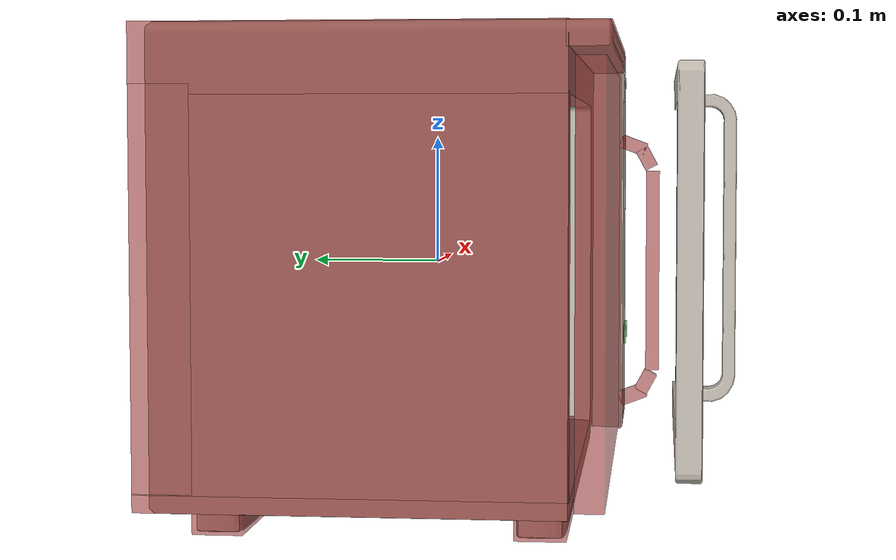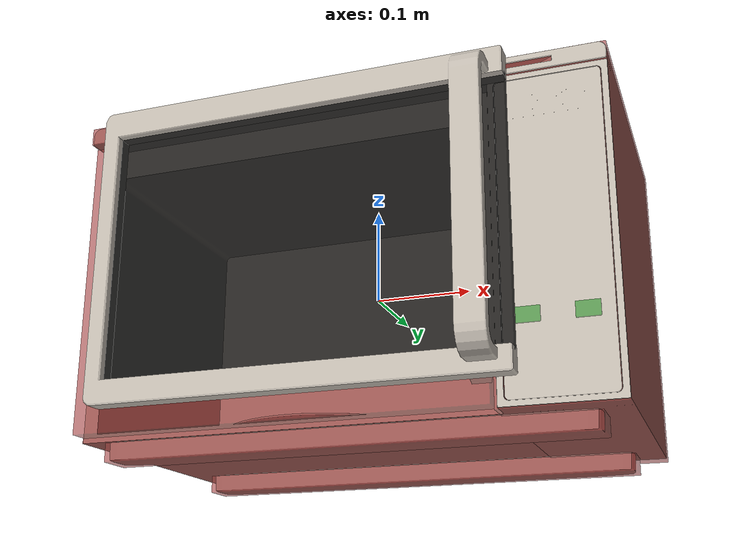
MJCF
<?xml version='1.0' encoding='UTF-8'?>
<mujoco model="model">
  <option timestep="0.002" gravity="0.0 0.0 -9.81"/>
  <compiler angle="radian"/>
  <asset>
    <mesh file="visuals/door.obj" name="door_vis"/>
    <mesh file="visuals/door_Clear.obj" name="door_Clear_vis"/>
    <mesh file="visuals/Body001.obj" name="Body001_vis"/>
    <mesh file="visuals/Disc001.obj" name="Disc001_vis"/>
    <texture file="visuals/T_BC001.png" name="Body001_material" type="2d"/>
    <material name="Body001_material" rgba="1 1 1 1.0" texture="Body001_material" shininess="0.1" specular="4"/>
    <texture file="visuals/T_BC001.png" name="door_material" type="2d"/>
    <material name="door_material" rgba="1 1 1 1.0" texture="door_material" shininess="0.4472135901451111" specular="0.3103448502657381"/>
    <material name="door_Clear_material" rgba="0.03637973591685295 0.03637973591685295 0.03637973591685295 0.800000011920929" shininess="0.4472135901451111" specular="0.3103448502657381"/>
    <texture file="visuals/T_BC001.png" name="Disc001_material" type="2d"/>
    <material name="Disc001_material" rgba="1 1 1 1.0" texture="Disc001_material" shininess="0.1" specular="4"/>
  </asset>
  <default>
    <default class="visual">
      <geom conaffinity="0" contype="0" group="1" type="mesh"/>
    </default>
    <default class="collision">
      <geom group="0" rgba="0.5 0 0 0.5"/>
    </default>
    <default class="spawn">
      <geom group="0" rgba="1 1 1 0.5" contype="0" conaffinity="0"/>
      <site group="0" rgba="1 1 1 0.5"/>
    </default>
    <default class="region">
      <geom group="1" conaffinity="0" contype="0" rgba="0 1 0 0"/>
    </default>
  </default>
  <worldbody>
    <body>
      <body name="object">
        <geom class="collision" type="cylinder" pos="-0.05763543024659157 0.011082738637924194 -0.13927628099918365" size="0.11278744786977768 0.0008700147154740989" quat="1.0 0.0 0.0 0.0" name="tray" rgba="0 1 0 0.5"/>
        <geom class="collision" type="box" pos="0.18966542184352875 -0.14820145070552826 -0.07778368890285492" size="0.010899275541305542 0.0010898024775087833 0.007179934997111559" quat="1.0 0.0 0.0 0.0" name="stop_button" rgba="0.0 0.5 0 0.5"/>
        <geom class="collision" type="box" pos="0.24208709597587585 -0.14820145070552826 -0.07778368890285492" size="0.010918227955698967 0.0010898024775087833 0.007179934997111559" quat="1.0 0.0 0.0 0.0" name="start_button" rgba="0.0 0.5 0 0.5"/>
        <geom mesh="Body001_vis" type="mesh" solimp="0.998 0.998 0.001" solref="0.001 1" friction="0.95 0.3 0.1" class="visual" material="Body001_material"/>
        <geom class="collision" type="box" pos="-0.05649961531162262 0.029966896399855614 -0.15164676308631897" size="0.21579916775226593 0.14951400458812714 0.00616192352026701" quat="1.0 0.0 0.0 0.0"/>
        <geom class="collision" type="box" pos="-0.2644837498664856 0.029966996982693672 -0.008132663555443287" size="0.007814250886440277 0.1495138257741928 0.13806308805942535" quat="1.0 0.0 0.0 0.0"/>
        <geom class="collision" type="box" pos="-0.05650017037987709 0.15837810933589935 -0.004743431694805622" size="0.2157985419034958 0.021102778613567352 0.14003092050552368" quat="1.0 0.0 0.0 0.0"/>
        <geom class="collision" type="box" pos="-0.056502193212509155 -0.13249026238918304 0.16796237230300903" size="0.21580001711845398 0.015356916934251785 0.009088726714253426" quat="1.0 0.0 0.0 0.0"/>
        <geom class="collision" type="box" pos="0.21454665064811707 0.016869667917490005 0.009098493494093418" size="0.05775176361203194 0.16261115670204163 0.16829872131347656" quat="1.0 0.0 0.0 0.0"/>
        <geom class="collision" type="box" pos="-0.056500960141420364 0.029967661947011948 0.1527765989303589" size="0.21579766273498535 0.1495133936405182 0.02462089993059635" quat="1.0 0.0 0.0 0.0"/>
        <geom class="collision" type="box" pos="0.1473204791545868 0.02996855601668358 -0.008132663555443287" size="0.011625289916992188 0.14951397478580475 0.13806168735027313" quat="1.0 0.0 0.0 0.0"/>
        <geom class="collision" type="box" pos="-0.0006951242685317993 -0.09923121333122253 -0.16784480214118958" size="0.2463834136724472 0.018072057515382767 0.0095522440969944" quat="1.0 0.0 0.0 0.0"/>
        <geom class="collision" type="box" pos="-0.0006951242685317993 0.1258891373872757 -0.16784480214118958" size="0.2463832050561905 0.018072044476866722 0.009552237577736378" quat="1.0 0.0 0.0 0.0"/>
        <body name="door">
          <joint axis="0.0 0.0 1.0" pos="-0.25876790285110474 -0.13358816504478455 -0.0004099905490875244" limited="true" name="microjoint" range="-1.5707963267948966 0.0" type="hinge" damping="1" frictionloss="1" armature=".01" stiffness="0.05"/>
          <geom mesh="door_vis" type="mesh" solimp="0.998 0.998 0.001" solref="0.001 1" friction="0.95 0.3 0.1" class="visual" material="door_material"/>
          <geom class="collision" type="box" pos="-0.05747814476490021 -0.1336144506931305 7.297919364646077e-05" size="0.2102060317993164 0.010283015668392181 0.15368500351905823" quat="1.0 0.0 0.0 0.0" name="door_main"/>
          <geom class="collision" type="box" pos="-0.056987322866916656 -0.1371203511953354 -0.0003347874735482037" size="0.15617835521697998 0.006391293369233608 0.09085484594106674" quat="1.0 0.0 0.0 0.0"/>
          <geom class="collision" type="box" pos="0.14707039296627045 -0.17343617975711823 -0.01623465120792389" size="0.008900480344891548 0.005757460370659828 0.08767075091600418" quat="1.0 0.0 0.0 0.0" name="door_handle_main"/>
          <geom class="collision" type="box" pos="0.14707039296627045 -0.15629811584949493 0.09394919127225876" size="0.008900480344891548 0.005757460370659828 0.011349364183843136" quat="0.823179304599762 -0.5677815079689026 -0.0 0.0"/>
          <geom class="collision" type="box" pos="0.14707039296627045 -0.16797927021980286 0.08249380439519882" size="0.008900480344891548 0.005757460370659828 0.009123585186898708" quat="0.969722330570221 -0.24421025812625885 -0.0 0.0"/>
          <geom class="collision" type="box" pos="0.14707039296627045 -0.16796772181987762 -0.11498462408781052" size="0.008900480344891548 0.005757460370659828 0.009099206887185574" quat="0.969722330570221 0.24421025812625885 0.0 0.0"/>
          <geom class="collision" type="box" pos="0.14707039296627045 -0.15629811584949493 -0.12641854584217072" size="0.008900480344891548 0.005757460370659828 0.011349364183843136" quat="0.823179304599762 0.5677815079689026 0.0 0.0"/>
          <body name="door_Clear">
            <geom mesh="door_Clear_vis" type="mesh" solimp="0.998 0.998 0.001" solref="0.001 1" friction="0.95 0.3 0.1" class="visual" material="door_Clear_material"/>
            <geom class="collision" type="box" pos="-0.056987322866916656 -0.1371203511953354 -0.0003347874735482037" size="0.15617835521697998 0.006391293369233608 0.09085484594106674" quat="1.0 0.0 0.0 0.0"/>
          </body>
        </body>
        <body name="Disc001">
          <joint axis="0.0 0.0 1.0" pos="-0.05763543024659157 0.011082738637924194 -0.10824134945869446" limited="false" name="Disc001_joint" range="0 360" type="hinge" damping="1" frictionloss="1" armature=".01" stiffness="0.05"/>
          <geom mesh="Disc001_vis" type="mesh" solimp="0.998 0.998 0.001" solref="0.001 1" friction="0.95 0.3 0.1" class="visual" material="Disc001_material"/>
          <geom class="collision" type="cylinder" pos="-0.05763543024659157 0.011082738637924194 -0.14247561991214752" size="0.11278744786977768 0.0016888442914932966" quat="1.0 0.0 0.0 0.0"/>
        </body>
        <geom class="region" name="reg_int" type="box" pos="-0.060230985283851624 0.009272120893001556 -0.00780949741601944" size="0.19178581035137177 0.12373214012384415 0.13159670478105545"/>
        <geom class="region" name="reg_main" type="box" pos="0.0 0.015749968588352203 7.450580596923828e-09" size="0.27329833602905274 0.1647307107448578 0.17839704251289368"/>
      <geom class="region" name="reg_tray" type="cylinder" pos="-0.05763543024659157 0.011082738637924194 -0.007309529459336772" size="0.11278744786977768 0.13009673682437278"/></body>
    </body>
  </worldbody>
  <actuator>
    <motor name="microjoint_actuator" joint="microjoint" gear="10"/>
    <motor name="Disc001_joint_actuator" joint="Disc001_joint" gear="10"/>
  </actuator>
</mujoco>
